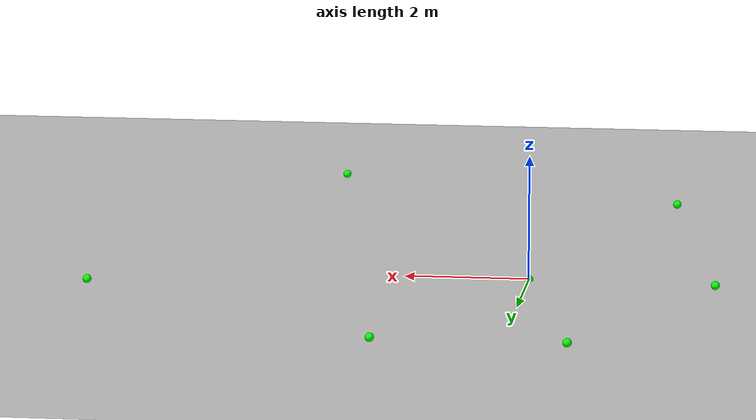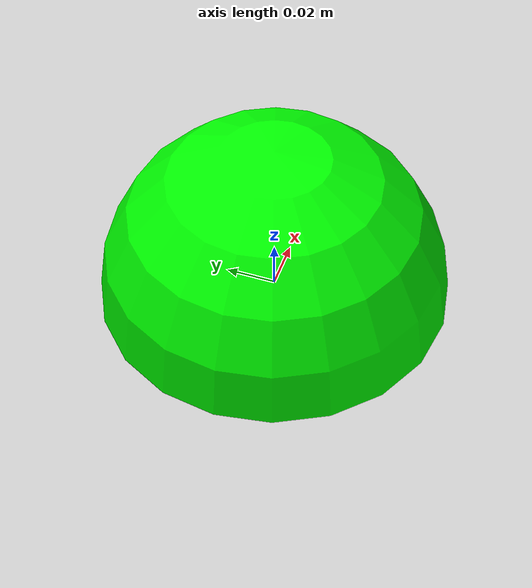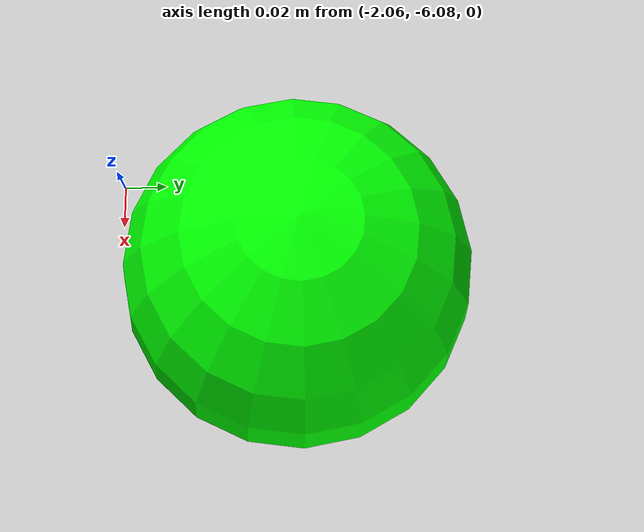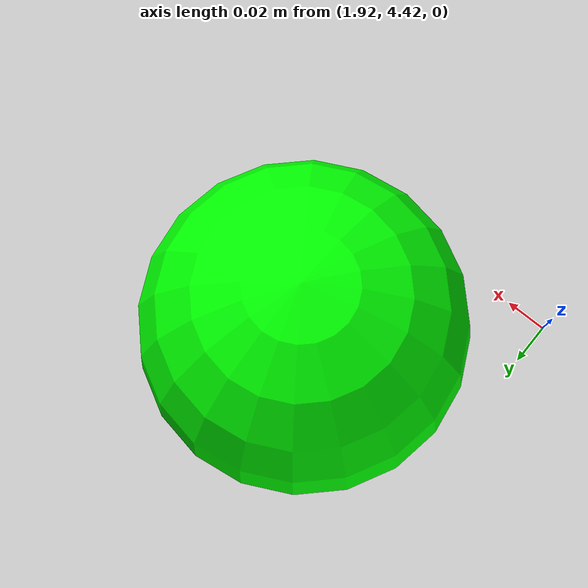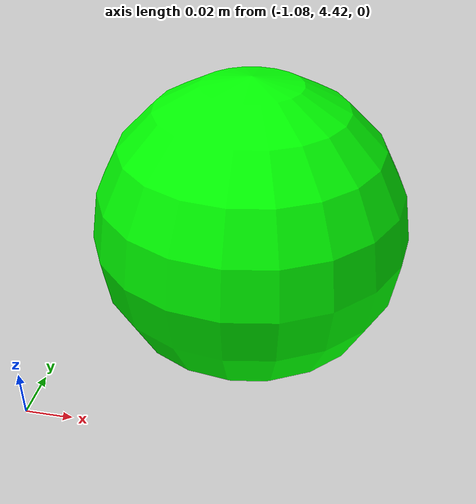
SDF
<sdf version="1.10">
  <world name="empty">
    <!-- Plugins -->
    <plugin name="gz::sim::systems::SceneBroadcaster" filename="gz-sim-scene-broadcaster-system"/>
    <plugin name="gz::sim::systems::UserCommands" filename="gz-sim-user-commands-system"/>
    <plugin name="gz::sim::systems::Physics" filename="gz-sim-physics-system"/>

    <!-- Ground plane -->
    <include>
      <uri>https://fuel.gazebosim.org/1.0/openrobotics/models/ground plane</uri>
    </include>

    <!-- Light -->
    <light name='sun' type='directional'>
      <pose>0 0 10 0 0 0</pose>
      <cast_shadows>true</cast_shadows>
      <direction>-0.5 0.1 -0.9</direction>
    </light>

    <model name="wp_marker_0">
      <static>true</static>
      <link name="link">
        <visual name="visual">
          <geometry><sphere><radius>0.07</radius></sphere></geometry>
          <material><ambient>0 1 0 1</ambient></material>
        </visual>
      </link>
      <pose>0 0 0 0 0 0</pose>
    </model>

    <!-- Waypoint markers (green spheres) -->
    <model name="wp_marker_1">
      <static>true</static>
      <link name="link">
        <visual name="visual">
          <geometry><sphere><radius>0.07</radius></sphere></geometry>
          <material><ambient>0 1 0 1</ambient></material>
        </visual>
      </link>
      <pose>-3.0 0.3 0.05 0 0 0</pose>
    </model>

    <model name="wp_marker_2">
      <static>true</static>
      <link name="link">
        <visual name="visual">
          <geometry><sphere><radius>0.07</radius></sphere></geometry>
          <material><ambient>0 1 0 1</ambient></material>
        </visual>
      </link>
      <pose>-1.0 4.5 0.05 0 0 0</pose>
    </model>

    <model name="wp_marker_3">
      <static>true</static>
      <link name="link">
        <visual name="visual">
          <geometry><sphere><radius>0.07</radius></sphere></geometry>
          <material><ambient>0 1 0 1</ambient></material>
        </visual>
      </link>
      <pose>2.0 4.5 0.05 0 0 0</pose>
    </model>

    <model name="wp_marker_4">
      <static>true</static>
      <link name="link">
        <visual name="visual">
          <geometry><sphere><radius>0.07</radius></sphere></geometry>
          <material><ambient>0 1 0 1</ambient></material>
        </visual>
      </link>
      <pose>7.0 1.0 0.05 0 0 0</pose>
    </model>

    <model name="wp_marker_5">
      <static>true</static>
      <link name="link">
        <visual name="visual">
          <geometry><sphere><radius>0.07</radius></sphere></geometry>
          <material><ambient>0 1 0 1</ambient></material>
        </visual>
      </link>
      <pose>4.0 -8.0 0.05 0 0 0</pose>
    </model>

    <model name="wp_marker_6">
      <static>true</static>
      <link name="link">
        <visual name="visual">
          <geometry><sphere><radius>0.07</radius></sphere></geometry>
          <material><ambient>0 1 0 1</ambient></material>
        </visual>
      </link>
      <pose>-2.0 -6.0 0.05 0 0 0</pose>
    </model>
  </world>
</sdf>
